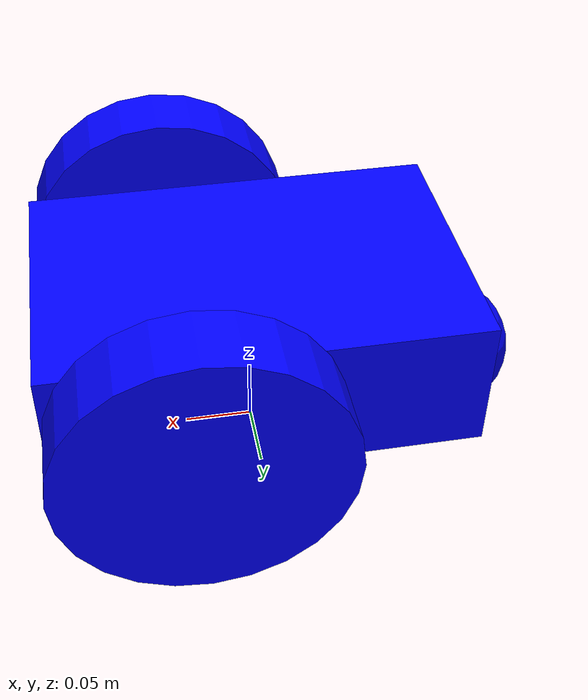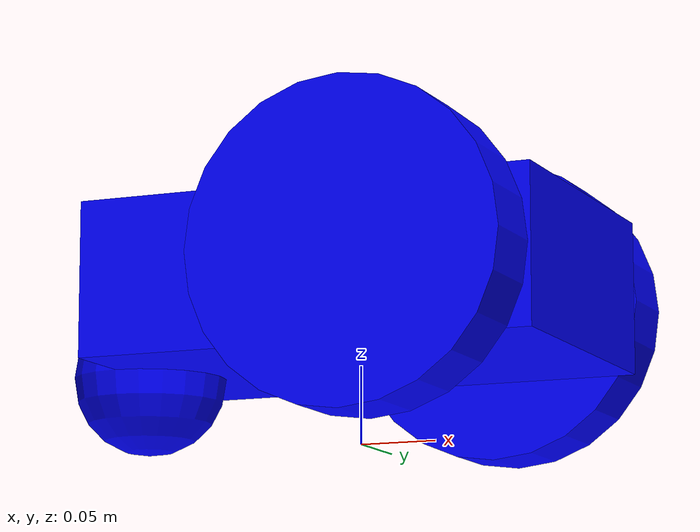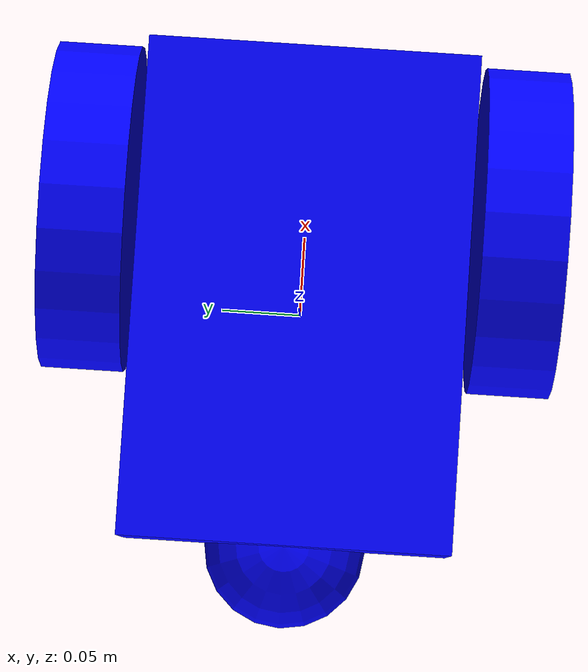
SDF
<?xml version='1.0'?>
<sdf version='1.4'>
  <model name="my_robot">
		<!-- Ignored by physics for building purposes-->
		<static>false</static>

<!-- Chassis -->

		<link name='chassis'>
      <pose>0 0 .1 0 0 0</pose>
			<inertial><mass>200</mass></inertial>

      <collision name='collision'>
        <geometry>
          <box>
            <size>.3 .2 .1</size>
          </box>
        </geometry>
      </collision>
      <visual name='visual'>
        <geometry>
          <box>
            <size>.3 .2 .1</size>
          </box>
        </geometry>
				<material>
					<ambient>0 0 1 1</ambient>
					<diffuse>0 0 1 1</diffuse>
					<specular>0 0 1 1</specular>
					<emissive>0 0 1 1</emissive>
        </material>
      </visual>

<!-- Sensors -->
		<!-- 15x1 cameras act as 15 colour sensors -->

<sensor name="colour_sensor_1" type="camera">
  <camera>
    <horizontal_fov>1.5707</horizontal_fov>
    <image>
      <width>30</width>
      <height>1</height>
    </image>
    <clip>
      <near>0.001</near>
      <!-- Sensor range -->
      <far>5</far>
    </clip>
  </camera>
 <pose> .15 0 .05 0 0 0.785</pose>
  <plugin name="camera_controller" filename="libgazebo_ros_camera.so">
    <alwaysOn>true</alwaysOn>
    <cameraName>front_colour_sensor_1</cameraName>
    <imageTopicName>image_raw</imageTopicName>
    <cameraInfoTopicName>camera_info</cameraInfoTopicName>
    <frameName>camera_link</frameName>
    <hackBaseline>0.07</hackBaseline>
    <distortionK1>0.0</distortionK1>
    <distortionK2>0.0</distortionK2>
    <distortionK3>0.0</distortionK3>
    <distortionT1>0.0</distortionT1>
    <distortionT2>0.0</distortionT2>
  </plugin>
  <always_on>1</always_on>
 <visualize>false</visualize>
</sensor>

<sensor name="colour_sensor_2" type="camera">
  <camera>
    <horizontal_fov>1.5707</horizontal_fov>
    <image>
      <width>30</width>
      <height>1</height>
    </image>
    <clip>
      <near>0.001</near>
      <!-- Sensor range -->
      <far>5</far>
    </clip>
  </camera>
 	<pose> .15 0 .05 0 0 -0.785</pose>
  <plugin name="camera_controller" filename="libgazebo_ros_camera.so">
    <alwaysOn>true</alwaysOn>
    <cameraName>front_colour_sensor_2</cameraName>
    <imageTopicName>image_raw</imageTopicName>
    <cameraInfoTopicName>camera_info</cameraInfoTopicName>
    <frameName>camera_link</frameName>
    <hackBaseline>0.07</hackBaseline>
    <distortionK1>0.0</distortionK1>
    <distortionK2>0.0</distortionK2>
    <distortionK3>0.0</distortionK3>
    <distortionT1>0.0</distortionT1>
    <distortionT2>0.0</distortionT2>
  </plugin>
  <always_on>1</always_on>
 <visualize>false</visualize>
</sensor>

<!-- Range sensors -->

<sensor name="laserscanner" type="ray">
  <visualize>false</visualize>
  <ray>
    <scan>
      <horizontal>
        <samples>60</samples>
        <min_angle>-1.5707</min_angle>
        <max_angle>1.5707</max_angle>
      </horizontal>
      <vertical>
        <samples>1</samples>
				<!-- Since 60 square pixels cover pi/2, and camera is 60x1, pixel height is (pi/2)/60 so min/max angle = +- pi/(2*60*2)-->
        <min_angle>-0.01308996939</min_angle>
        <max_angle>0.01308996939</max_angle>
      </vertical>
    </scan>
    <range>
      <min>0.001</min>
      <max>4</max>
      <resolution>30</resolution>
    </range>
  </ray>
 	<pose> .15 0 .05 0 0 0</pose>
  <plugin name="gazebo_ros_base_scan_link_controller" filename="libgazebo_ros_laser.so">
    <gaussianNoise>0.005</gaussianNoise>
    <alwaysOn>true</alwaysOn>
    <topicName>scan_sensor</topicName>
  </plugin>
</sensor>

<!-- Caster -->

      <collision name='caster_collision'>
        <pose>-0.15 0 -0.05 0 0 0</pose>
        <geometry>
            <sphere>
            <radius>.05</radius>
          </sphere>
        </geometry>

        <surface>
          <friction>
            <ode>
              <mu>0</mu>
              <mu2>0</mu2>
              <slip1>1.0</slip1>
              <slip2>1.0</slip2>
            </ode>
          </friction>
        </surface>
      </collision>

      <visual name='caster_visual'>
        <pose>-0.15 0 -0.05 0 0 0</pose>
        <geometry>
          <sphere>
            <radius>.05</radius>
          </sphere>
        </geometry>
				<material>
					<ambient>0 0 1 1</ambient>
					<diffuse>0 0 1 1</diffuse>
					<specular>0 0 1 1</specular>
					<emissive>0 0 1 1</emissive>
        </material>
      </visual>
 		</link>

<!-- Left wheel -->

		<link name="left_wheel">
		  <pose>0.05 0.13 0.1 0 1.5707 1.5707</pose>
		  <inertial><mass>30</mass></inertial>
		  <collision name="collision">
		    <geometry>
		      <cylinder>
		        <radius>.1</radius>
		        <length>.05</length>
		      </cylinder>
		    </geometry>

        <surface>
          <friction>
            <ode>
              <mu>0.5</mu>
              <mu2>0.5</mu2>
            </ode>
          </friction>
        </surface>
		  </collision>
		  <visual name="visual">
		    <geometry>
		      <cylinder>
		        <radius>.1</radius>
		        <length>.05</length>
		      </cylinder>
		    </geometry>
				<material>
					<ambient>0 0 1 1</ambient>
					<diffuse>0 0 1 1</diffuse>
					<specular>0 0 1 1</specular>
					<emissive>0 0 1 1</emissive>
        </material>
		  </visual>
		</link>

<!-- Right wheel -->

		<link name="right_wheel">
		  <pose>0.05 -0.13 0.1 0 1.5707 1.5707</pose>
		  <inertial><mass>30</mass></inertial>
		  <collision name="collision">
		    <geometry>
		      <cylinder>
		        <radius>.1</radius>
		        <length>.05</length>
		      </cylinder>
		    </geometry>

        <surface>
          <friction>
            <ode>
              <mu>0.5</mu>
              <mu2>0.5</mu2>
            </ode>
          </friction>
        </surface>
		  </collision>
		  <visual name="visual">
		    <geometry>
		      <cylinder>
		        <radius>.1</radius>
		        <length>.05</length>
		      </cylinder>
		    </geometry>
				<material>
					<ambient>0 0 1 1</ambient>
					<diffuse>0 0 1 1</diffuse>
					<specular>0 0 1 1</specular>
					<emissive>0 0 1 1</emissive>
        </material>
		  </visual>
		</link>

<!-- Wheel joints -->

    <joint type="revolute" name="left_wheel_hinge">
      <pose>0 0 -0.03 0 0 0</pose>
      <child>left_wheel</child>
      <parent>chassis</parent>
      <axis>
        <xyz>0 1 0</xyz>
      </axis>
    </joint>

    <joint type="revolute" name="right_wheel_hinge">
      <pose>0 0 0.03 0 0 0</pose>
      <child>right_wheel</child>
      <parent>chassis</parent>
      <axis>
        <xyz>0 1 0</xyz>
      </axis>
    </joint>

<!-- Plugins -->

<gazebo>
   <plugin name="skid_steer_drive_controller" filename="libgazebo_ros_skid_steer_drive.so">
   <updateRate>9999.0</updateRate>
   <robotNamespace>/</robotNamespace>
   <leftFrontJoint>left_wheel_hinge</leftFrontJoint>
   <rightFrontJoint>right_wheel_hinge</rightFrontJoint>
   <wheelSeparation>0.25</wheelSeparation>
   <wheelDiameter>0.2</wheelDiameter>
   <robotBaseFrame>base_footprint</robotBaseFrame>
   <torque>20</torque>
   <topicName>cmd_velo</topicName>
   <broadcastTF>false</broadcastTF>
 </plugin>
</gazebo>

  </model>
</sdf>
